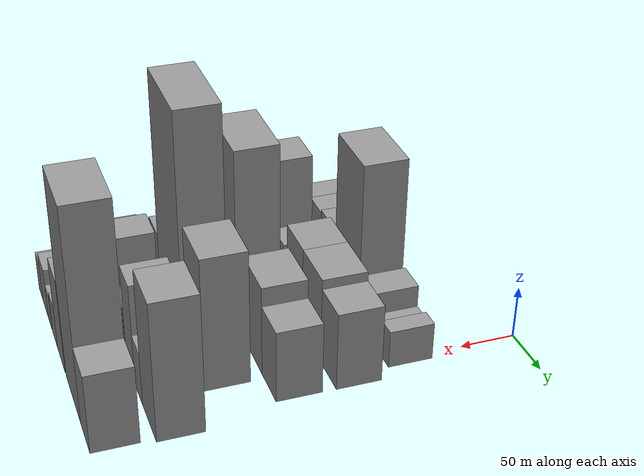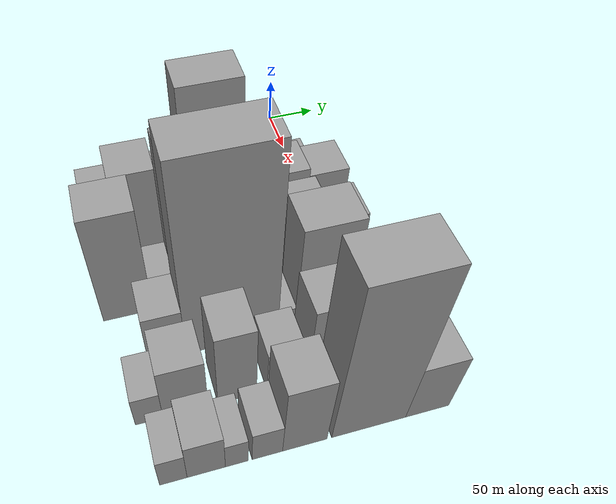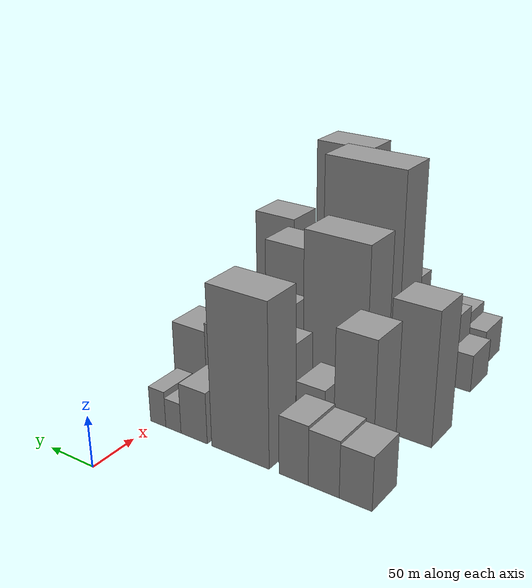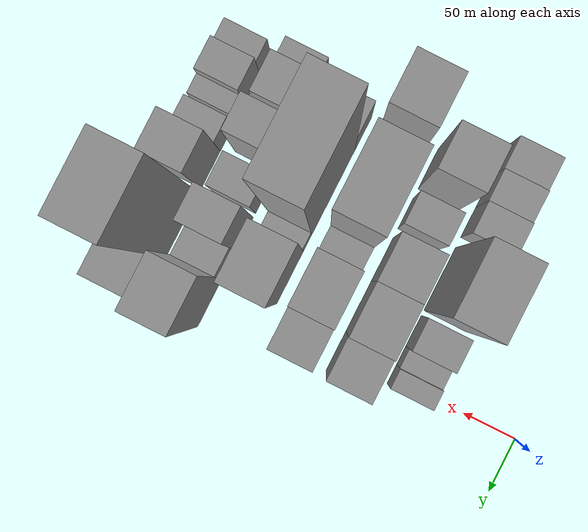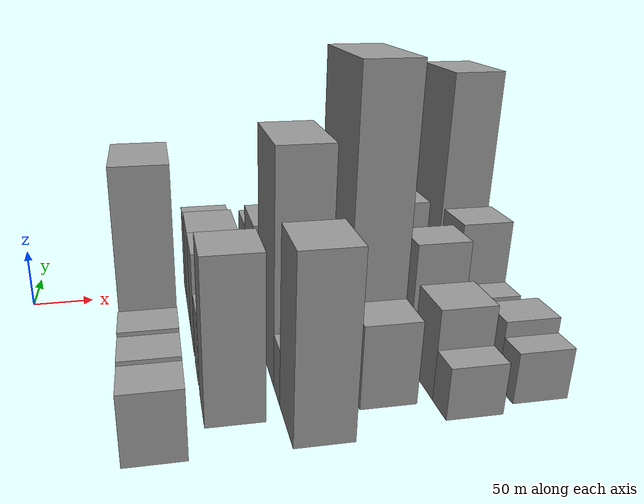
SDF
<sdf version="1.6">
 <world name="default">
  <model name="building_19">
   <static>1</static>
   <pose>100.0000 -207.8662 0 0.000000 0.000000 0.000000</pose>
   <link name="link">
    <pose>0 0 25.50 0 0 0</pose>
    <collision name="collision"><geometry><box><size>40.0000 30.1730 51.0000</size></box></geometry></collision>
    <visual name="visual">
     <cast_shadows>0</cast_shadows>
     <geometry><box><size>40.0000 30.1730 51.0000</size></box></geometry>
     <material>
      <script>
       <uri>model://grey_wall/materials/scripts</uri>
       <uri>model://grey_wall/materials/textures</uri>
       <name>vrc/grey_wall</name>
      </script>
     </material>
    </visual>
   </link>
  </model>
  <model name="building_20">
   <static>1</static>
   <pose>100.0000 -178.0327 0 0.000000 0.000000 0.000000</pose>
   <link name="link">
    <pose>0 0 27.00 0 0 0</pose>
    <collision name="collision"><geometry><box><size>40.0000 29.4939 54.0000</size></box></geometry></collision>
    <visual name="visual">
     <cast_shadows>0</cast_shadows>
     <geometry><box><size>40.0000 29.4939 54.0000</size></box></geometry>
     <material>
      <script>
       <uri>model://grey_wall/materials/scripts</uri>
       <uri>model://grey_wall/materials/textures</uri>
       <name>vrc/grey_wall</name>
      </script>
     </material>
    </visual>
   </link>
  </model>
  <model name="building_21">
   <static>1</static>
   <pose>100.0000 -148.8522 0 0.000000 0.000000 0.000000</pose>
   <link name="link">
    <pose>0 0 28.50 0 0 0</pose>
    <collision name="collision"><geometry><box><size>40.0000 28.8671 57.0000</size></box></geometry></collision>
    <visual name="visual">
     <cast_shadows>0</cast_shadows>
     <geometry><box><size>40.0000 28.8671 57.0000</size></box></geometry>
     <material>
      <script>
       <uri>model://grey_wall/materials/scripts</uri>
       <uri>model://grey_wall/materials/textures</uri>
       <name>vrc/grey_wall</name>
      </script>
     </material>
    </visual>
   </link>
  </model>
  <model name="building_22">
   <static>1</static>
   <pose>100.0000 -93.9196 0 0.000000 0.000000 0.000000</pose>
   <link name="link">
    <pose>0 0 78.00 0 0 0</pose>
    <collision name="collision"><geometry><box><size>40.0000 60.9980 156.0000</size></box></geometry></collision>
    <visual name="visual">
     <cast_shadows>0</cast_shadows>
     <geometry><box><size>40.0000 60.9980 156.0000</size></box></geometry>
     <material>
      <script>
       <uri>model://grey_wall/materials/scripts</uri>
       <uri>model://grey_wall/materials/textures</uri>
       <name>vrc/grey_wall</name>
      </script>
     </material>
    </visual>
   </link>
  </model>
  <model name="building_23">
   <static>1</static>
   <pose>100.0000 -43.6051 0 0.000000 0.000000 0.000000</pose>
   <link name="link">
    <pose>0 0 25.50 0 0 0</pose>
    <collision name="collision"><geometry><box><size>40.0000 29.6312 51.0000</size></box></geometry></collision>
    <visual name="visual">
     <cast_shadows>0</cast_shadows>
     <geometry><box><size>40.0000 29.6312 51.0000</size></box></geometry>
     <material>
      <script>
       <uri>model://grey_wall/materials/scripts</uri>
       <uri>model://grey_wall/materials/textures</uri>
       <name>vrc/grey_wall</name>
      </script>
     </material>
    </visual>
   </link>
  </model>
  <model name="building_24">
   <static>1</static>
   <pose>100.0000 -19.9299 0 0.000000 0.000000 0.000000</pose>
   <link name="link">
    <pose>0 0 15.00 0 0 0</pose>
    <collision name="collision"><geometry><box><size>40.0000 17.7191 30.0000</size></box></geometry></collision>
    <visual name="visual">
     <cast_shadows>0</cast_shadows>
     <geometry><box><size>40.0000 17.7191 30.0000</size></box></geometry>
     <material>
      <script>
       <uri>model://grey_wall/materials/scripts</uri>
       <uri>model://grey_wall/materials/textures</uri>
       <name>vrc/grey_wall</name>
      </script>
     </material>
    </visual>
   </link>
  </model>
  <model name="building_25">
   <static>1</static>
   <pose>100.0000 -2.0524 0 0.000000 0.000000 0.000000</pose>
   <link name="link">
    <pose>0 0 18.00 0 0 0</pose>
    <collision name="collision"><geometry><box><size>40.0000 18.0360 36.0000</size></box></geometry></collision>
    <visual name="visual">
     <cast_shadows>0</cast_shadows>
     <geometry><box><size>40.0000 18.0360 36.0000</size></box></geometry>
     <material>
      <script>
       <uri>model://grey_wall/materials/scripts</uri>
       <uri>model://grey_wall/materials/textures</uri>
       <name>vrc/grey_wall</name>
      </script>
     </material>
    </visual>
   </link>
  </model>
  <model name="building_68">
   <static>1</static>
   <pose>152.0000 -174.6141 0 0.000000 0.000000 0.000000</pose>
   <link name="link">
    <pose>0 0 60.00 0 0 0</pose>
    <collision name="collision"><geometry><box><size>40.0000 39.0573 120.0000</size></box></geometry></collision>
    <visual name="visual">
     <cast_shadows>0</cast_shadows>
     <geometry><box><size>40.0000 39.0573 120.0000</size></box></geometry>
     <material>
      <script>
       <uri>model://grey_wall/materials/scripts</uri>
       <uri>model://grey_wall/materials/textures</uri>
       <name>vrc/grey_wall</name>
      </script>
     </material>
    </visual>
   </link>
  </model>
  <model name="building_69">
   <static>1</static>
   <pose>152.0000 -131.2801 0 0.000000 0.000000 0.000000</pose>
   <link name="link">
    <pose>0 0 28.50 0 0 0</pose>
    <collision name="collision"><geometry><box><size>40.0000 29.6106 57.0000</size></box></geometry></collision>
    <visual name="visual">
     <cast_shadows>0</cast_shadows>
     <geometry><box><size>40.0000 29.6106 57.0000</size></box></geometry>
     <material>
      <script>
       <uri>model://grey_wall/materials/scripts</uri>
       <uri>model://grey_wall/materials/textures</uri>
       <name>vrc/grey_wall</name>
      </script>
     </material>
    </visual>
   </link>
  </model>
  <model name="building_70">
   <static>1</static>
   <pose>152.0000 -86.2488 0 0.000000 0.000000 0.000000</pose>
   <link name="link">
    <pose>0 0 42.00 0 0 0</pose>
    <collision name="collision"><geometry><box><size>40.0000 42.4521 84.0000</size></box></geometry></collision>
    <visual name="visual">
     <cast_shadows>0</cast_shadows>
     <geometry><box><size>40.0000 42.4521 84.0000</size></box></geometry>
     <material>
      <script>
       <uri>model://grey_wall/materials/scripts</uri>
       <uri>model://grey_wall/materials/textures</uri>
       <name>vrc/grey_wall</name>
      </script>
     </material>
    </visual>
   </link>
  </model>
  <model name="building_71">
   <static>1</static>
   <pose>152.0000 -41.0210 0 0.000000 0.000000 0.000000</pose>
   <link name="link">
    <pose>0 0 42.00 0 0 0</pose>
    <collision name="collision"><geometry><box><size>40.0000 48.0034 84.0000</size></box></geometry></collision>
    <visual name="visual">
     <cast_shadows>0</cast_shadows>
     <geometry><box><size>40.0000 48.0034 84.0000</size></box></geometry>
     <material>
      <script>
       <uri>model://grey_wall/materials/scripts</uri>
       <uri>model://grey_wall/materials/textures</uri>
       <name>vrc/grey_wall</name>
      </script>
     </material>
    </visual>
   </link>
  </model>
  <model name="building_72">
   <static>1</static>
   <pose>152.0000 2.0179 0 0.000000 0.000000 0.000000</pose>
   <link name="link">
    <pose>0 0 37.50 0 0 0</pose>
    <collision name="collision"><geometry><box><size>40.0000 38.0745 75.0000</size></box></geometry></collision>
    <visual name="visual">
     <cast_shadows>0</cast_shadows>
     <geometry><box><size>40.0000 38.0745 75.0000</size></box></geometry>
     <material>
      <script>
       <uri>model://grey_wall/materials/scripts</uri>
       <uri>model://grey_wall/materials/textures</uri>
       <name>vrc/grey_wall</name>
      </script>
     </material>
    </visual>
   </link>
  </model>
  <model name="building_122">
   <static>1</static>
   <pose>204.0000 -200.6649 0 0.000000 0.000000 0.000000</pose>
   <link name="link">
    <pose>0 0 66.00 0 0 0</pose>
    <collision name="collision"><geometry><box><size>40.0000 44.2879 132.0000</size></box></geometry></collision>
    <visual name="visual">
     <cast_shadows>0</cast_shadows>
     <geometry><box><size>40.0000 44.2879 132.0000</size></box></geometry>
     <material>
      <script>
       <uri>model://grey_wall/materials/scripts</uri>
       <uri>model://grey_wall/materials/textures</uri>
       <name>vrc/grey_wall</name>
      </script>
     </material>
    </visual>
   </link>
  </model>
  <model name="building_123">
   <static>1</static>
   <pose>204.0000 -167.4529 0 0.000000 0.000000 0.000000</pose>
   <link name="link">
    <pose>0 0 21.00 0 0 0</pose>
    <collision name="collision"><geometry><box><size>40.0000 22.1360 42.0000</size></box></geometry></collision>
    <visual name="visual">
     <cast_shadows>0</cast_shadows>
     <geometry><box><size>40.0000 22.1360 42.0000</size></box></geometry>
     <material>
      <script>
       <uri>model://grey_wall/materials/scripts</uri>
       <uri>model://grey_wall/materials/textures</uri>
       <name>vrc/grey_wall</name>
      </script>
     </material>
    </visual>
   </link>
  </model>
  <model name="building_124">
   <static>1</static>
   <pose>204.0000 -123.0507 0 0.000000 0.000000 0.000000</pose>
   <link name="link">
    <pose>0 0 87.00 0 0 0</pose>
    <collision name="collision"><geometry><box><size>40.0000 66.6684 174.0000</size></box></geometry></collision>
    <visual name="visual">
     <cast_shadows>0</cast_shadows>
     <geometry><box><size>40.0000 66.6684 174.0000</size></box></geometry>
     <material>
      <script>
       <uri>model://grey_wall/materials/scripts</uri>
       <uri>model://grey_wall/materials/textures</uri>
       <name>vrc/grey_wall</name>
      </script>
     </material>
    </visual>
   </link>
  </model>
  <model name="building_125">
   <static>1</static>
   <pose>204.0000 -78.4507 0 0.000000 0.000000 0.000000</pose>
   <link name="link">
    <pose>0 0 19.50 0 0 0</pose>
    <collision name="collision"><geometry><box><size>40.0000 22.5318 39.0000</size></box></geometry></collision>
    <visual name="visual">
     <cast_shadows>0</cast_shadows>
     <geometry><box><size>40.0000 22.5318 39.0000</size></box></geometry>
     <material>
      <script>
       <uri>model://grey_wall/materials/scripts</uri>
       <uri>model://grey_wall/materials/textures</uri>
       <name>vrc/grey_wall</name>
      </script>
     </material>
    </visual>
   </link>
  </model>
  <model name="building_126">
   <static>1</static>
   <pose>204.0000 -42.1700 0 0.000000 0.000000 0.000000</pose>
   <link name="link">
    <pose>0 0 43.50 0 0 0</pose>
    <collision name="collision"><geometry><box><size>40.0000 50.0296 87.0000</size></box></geometry></collision>
    <visual name="visual">
     <cast_shadows>0</cast_shadows>
     <geometry><box><size>40.0000 50.0296 87.0000</size></box></geometry>
     <material>
      <script>
       <uri>model://grey_wall/materials/scripts</uri>
       <uri>model://grey_wall/materials/textures</uri>
       <name>vrc/grey_wall</name>
      </script>
     </material>
    </visual>
   </link>
  </model>
  <model name="building_127">
   <static>1</static>
   <pose>204.0000 1.7032 0 0.000000 0.000000 0.000000</pose>
   <link name="link">
    <pose>0 0 34.50 0 0 0</pose>
    <collision name="collision"><geometry><box><size>40.0000 37.7168 69.0000</size></box></geometry></collision>
    <visual name="visual">
     <cast_shadows>0</cast_shadows>
     <geometry><box><size>40.0000 37.7168 69.0000</size></box></geometry>
     <material>
      <script>
       <uri>model://grey_wall/materials/scripts</uri>
       <uri>model://grey_wall/materials/textures</uri>
       <name>vrc/grey_wall</name>
      </script>
     </material>
    </visual>
   </link>
  </model>
  <model name="building_167">
   <static>1</static>
   <pose>256.0000 -175.7738 0 0.000000 0.000000 0.000000</pose>
   <link name="link">
    <pose>0 0 31.50 0 0 0</pose>
    <collision name="collision"><geometry><box><size>40.0000 32.5851 63.0000</size></box></geometry></collision>
    <visual name="visual">
     <cast_shadows>0</cast_shadows>
     <geometry><box><size>40.0000 32.5851 63.0000</size></box></geometry>
     <material>
      <script>
       <uri>model://grey_wall/materials/scripts</uri>
       <uri>model://grey_wall/materials/textures</uri>
       <name>vrc/grey_wall</name>
      </script>
     </material>
    </visual>
   </link>
  </model>
  <model name="building_168">
   <static>1</static>
   <pose>256.0000 -118.4840 0 0.000000 0.000000 0.000000</pose>
   <link name="link">
    <pose>0 0 112.50 0 0 0</pose>
    <collision name="collision"><geometry><box><size>40.0000 81.9945 225.0000</size></box></geometry></collision>
    <visual name="visual">
     <cast_shadows>0</cast_shadows>
     <geometry><box><size>40.0000 81.9945 225.0000</size></box></geometry>
     <material>
      <script>
       <uri>model://grey_wall/materials/scripts</uri>
       <uri>model://grey_wall/materials/textures</uri>
       <name>vrc/grey_wall</name>
      </script>
     </material>
    </visual>
   </link>
  </model>
  <model name="building_169">
   <static>1</static>
   <pose>256.0000 -69.5954 0 0.000000 0.000000 0.000000</pose>
   <link name="link">
    <pose>0 0 15.00 0 0 0</pose>
    <collision name="collision"><geometry><box><size>40.0000 15.7825 30.0000</size></box></geometry></collision>
    <visual name="visual">
     <cast_shadows>0</cast_shadows>
     <geometry><box><size>40.0000 15.7825 30.0000</size></box></geometry>
     <material>
      <script>
       <uri>model://grey_wall/materials/scripts</uri>
       <uri>model://grey_wall/materials/textures</uri>
       <name>vrc/grey_wall</name>
      </script>
     </material>
    </visual>
   </link>
  </model>
  <model name="building_170">
   <static>1</static>
   <pose>256.0000 -36.2695 0 0.000000 0.000000 0.000000</pose>
   <link name="link">
    <pose>0 0 64.50 0 0 0</pose>
    <collision name="collision"><geometry><box><size>40.0000 50.8694 129.0000</size></box></geometry></collision>
    <visual name="visual">
     <cast_shadows>0</cast_shadows>
     <geometry><box><size>40.0000 50.8694 129.0000</size></box></geometry>
     <material>
      <script>
       <uri>model://grey_wall/materials/scripts</uri>
       <uri>model://grey_wall/materials/textures</uri>
       <name>vrc/grey_wall</name>
      </script>
     </material>
    </visual>
   </link>
  </model>
  <model name="building_209">
   <static>1</static>
   <pose>308.0000 -201.0558 0 0.000000 0.000000 0.000000</pose>
   <link name="link">
    <pose>0 0 19.50 0 0 0</pose>
    <collision name="collision"><geometry><box><size>40.0000 22.3268 39.0000</size></box></geometry></collision>
    <visual name="visual">
     <cast_shadows>0</cast_shadows>
     <geometry><box><size>40.0000 22.3268 39.0000</size></box></geometry>
     <material>
      <script>
       <uri>model://grey_wall/materials/scripts</uri>
       <uri>model://grey_wall/materials/textures</uri>
       <name>vrc/grey_wall</name>
      </script>
     </material>
    </visual>
   </link>
  </model>
  <model name="building_210">
   <static>1</static>
   <pose>308.0000 -171.3919 0 0.000000 0.000000 0.000000</pose>
   <link name="link">
    <pose>0 0 34.50 0 0 0</pose>
    <collision name="collision"><geometry><box><size>40.0000 37.0009 69.0000</size></box></geometry></collision>
    <visual name="visual">
     <cast_shadows>0</cast_shadows>
     <geometry><box><size>40.0000 37.0009 69.0000</size></box></geometry>
     <material>
      <script>
       <uri>model://grey_wall/materials/scripts</uri>
       <uri>model://grey_wall/materials/textures</uri>
       <name>vrc/grey_wall</name>
      </script>
     </material>
    </visual>
   </link>
  </model>
  <model name="building_211">
   <static>1</static>
   <pose>308.0000 -128.5199 0 0.000000 0.000000 0.000000</pose>
   <link name="link">
    <pose>0 0 48.00 0 0 0</pose>
    <collision name="collision"><geometry><box><size>40.0000 32.7432 96.0000</size></box></geometry></collision>
    <visual name="visual">
     <cast_shadows>0</cast_shadows>
     <geometry><box><size>40.0000 32.7432 96.0000</size></box></geometry>
     <material>
      <script>
       <uri>model://grey_wall/materials/scripts</uri>
       <uri>model://grey_wall/materials/textures</uri>
       <name>vrc/grey_wall</name>
      </script>
     </material>
    </visual>
   </link>
  </model>
  <model name="building_212">
   <static>1</static>
   <pose>308.0000 -87.6714 0 0.000000 0.000000 0.000000</pose>
   <link name="link">
    <pose>0 0 27.00 0 0 0</pose>
    <collision name="collision"><geometry><box><size>40.0000 30.9537 54.0000</size></box></geometry></collision>
    <visual name="visual">
     <cast_shadows>0</cast_shadows>
     <geometry><box><size>40.0000 30.9537 54.0000</size></box></geometry>
     <material>
      <script>
       <uri>model://grey_wall/materials/scripts</uri>
       <uri>model://grey_wall/materials/textures</uri>
       <name>vrc/grey_wall</name>
      </script>
     </material>
    </visual>
   </link>
  </model>
  <model name="building_213">
   <static>1</static>
   <pose>308.0000 -52.2334 0 0.000000 0.000000 0.000000</pose>
   <link name="link">
    <pose>0 0 49.50 0 0 0</pose>
    <collision name="collision"><geometry><box><size>40.0000 31.9223 99.0000</size></box></geometry></collision>
    <visual name="visual">
     <cast_shadows>0</cast_shadows>
     <geometry><box><size>40.0000 31.9223 99.0000</size></box></geometry>
     <material>
      <script>
       <uri>model://grey_wall/materials/scripts</uri>
       <uri>model://grey_wall/materials/textures</uri>
       <name>vrc/grey_wall</name>
      </script>
     </material>
    </visual>
   </link>
  </model>
  <model name="building_214">
   <static>1</static>
   <pose>308.0000 -22.9744 0 0.000000 0.000000 0.000000</pose>
   <link name="link">
    <pose>0 0 25.50 0 0 0</pose>
    <collision name="collision"><geometry><box><size>40.0000 26.5957 51.0000</size></box></geometry></collision>
    <visual name="visual">
     <cast_shadows>0</cast_shadows>
     <geometry><box><size>40.0000 26.5957 51.0000</size></box></geometry>
     <material>
      <script>
       <uri>model://grey_wall/materials/scripts</uri>
       <uri>model://grey_wall/materials/textures</uri>
       <name>vrc/grey_wall</name>
      </script>
     </material>
    </visual>
   </link>
  </model>
  <model name="building_215">
   <static>1</static>
   <pose>308.0000 14.1128 0 0.000000 0.000000 0.000000</pose>
   <link name="link">
    <pose>0 0 66.00 0 0 0</pose>
    <collision name="collision"><geometry><box><size>40.0000 47.5788 132.0000</size></box></geometry></collision>
    <visual name="visual">
     <cast_shadows>0</cast_shadows>
     <geometry><box><size>40.0000 47.5788 132.0000</size></box></geometry>
     <material>
      <script>
       <uri>model://grey_wall/materials/scripts</uri>
       <uri>model://grey_wall/materials/textures</uri>
       <name>vrc/grey_wall</name>
      </script>
     </material>
    </visual>
   </link>
  </model>
  <model name="building_255">
   <static>1</static>
   <pose>360.0000 -192.3508 0 0.000000 0.000000 0.000000</pose>
   <link name="link">
    <pose>0 0 19.50 0 0 0</pose>
    <collision name="collision"><geometry><box><size>40.0000 21.0411 39.0000</size></box></geometry></collision>
    <visual name="visual">
     <cast_shadows>0</cast_shadows>
     <geometry><box><size>40.0000 21.0411 39.0000</size></box></geometry>
     <material>
      <script>
       <uri>model://grey_wall/materials/scripts</uri>
       <uri>model://grey_wall/materials/textures</uri>
       <name>vrc/grey_wall</name>
      </script>
     </material>
    </visual>
   </link>
  </model>
  <model name="building_256">
   <static>1</static>
   <pose>360.0000 -166.9506 0 0.000000 0.000000 0.000000</pose>
   <link name="link">
    <pose>0 0 25.50 0 0 0</pose>
    <collision name="collision"><geometry><box><size>40.0000 29.7593 51.0000</size></box></geometry></collision>
    <visual name="visual">
     <cast_shadows>0</cast_shadows>
     <geometry><box><size>40.0000 29.7593 51.0000</size></box></geometry>
     <material>
      <script>
       <uri>model://grey_wall/materials/scripts</uri>
       <uri>model://grey_wall/materials/textures</uri>
       <name>vrc/grey_wall</name>
      </script>
     </material>
    </visual>
   </link>
  </model>
  <model name="building_257">
   <static>1</static>
   <pose>360.0000 -143.0041 0 0.000000 0.000000 0.000000</pose>
   <link name="link">
    <pose>0 0 18.00 0 0 0</pose>
    <collision name="collision"><geometry><box><size>40.0000 18.1336 36.0000</size></box></geometry></collision>
    <visual name="visual">
     <cast_shadows>0</cast_shadows>
     <geometry><box><size>40.0000 18.1336 36.0000</size></box></geometry>
     <material>
      <script>
       <uri>model://grey_wall/materials/scripts</uri>
       <uri>model://grey_wall/materials/textures</uri>
       <name>vrc/grey_wall</name>
      </script>
     </material>
    </visual>
   </link>
  </model>
  <model name="building_258">
   <static>1</static>
   <pose>360.0000 -118.7167 0 0.000000 0.000000 0.000000</pose>
   <link name="link">
    <pose>0 0 21.00 0 0 0</pose>
    <collision name="collision"><geometry><box><size>40.0000 24.4412 42.0000</size></box></geometry></collision>
    <visual name="visual">
     <cast_shadows>0</cast_shadows>
     <geometry><box><size>40.0000 24.4412 42.0000</size></box></geometry>
     <material>
      <script>
       <uri>model://grey_wall/materials/scripts</uri>
       <uri>model://grey_wall/materials/textures</uri>
       <name>vrc/grey_wall</name>
      </script>
     </material>
    </visual>
   </link>
  </model>
  <model name="building_259">
   <static>1</static>
   <pose>360.0000 -88.2922 0 0.000000 0.000000 0.000000</pose>
   <link name="link">
    <pose>0 0 46.50 0 0 0</pose>
    <collision name="collision"><geometry><box><size>40.0000 36.4079 93.0000</size></box></geometry></collision>
    <visual name="visual">
     <cast_shadows>0</cast_shadows>
     <geometry><box><size>40.0000 36.4079 93.0000</size></box></geometry>
     <material>
      <script>
       <uri>model://grey_wall/materials/scripts</uri>
       <uri>model://grey_wall/materials/textures</uri>
       <name>vrc/grey_wall</name>
      </script>
     </material>
    </visual>
   </link>
  </model>
  <model name="building_260">
   <static>1</static>
   <pose>360.0000 -34.6768 0 0.000000 0.000000 0.000000</pose>
   <link name="link">
    <pose>0 0 100.50 0 0 0</pose>
    <collision name="collision"><geometry><box><size>40.0000 62.8228 201.0000</size></box></geometry></collision>
    <visual name="visual">
     <cast_shadows>0</cast_shadows>
     <geometry><box><size>40.0000 62.8228 201.0000</size></box></geometry>
     <material>
      <script>
       <uri>model://grey_wall/materials/scripts</uri>
       <uri>model://grey_wall/materials/textures</uri>
       <name>vrc/grey_wall</name>
      </script>
     </material>
    </visual>
   </link>
  </model>
  <model name="building_261">
   <static>1</static>
   <pose>360.0000 15.6604 0 0.000000 0.000000 0.000000</pose>
   <link name="link">
    <pose>0 0 37.50 0 0 0</pose>
    <collision name="collision"><geometry><box><size>40.0000 37.8515 75.0000</size></box></geometry></collision>
    <visual name="visual">
     <cast_shadows>0</cast_shadows>
     <geometry><box><size>40.0000 37.8515 75.0000</size></box></geometry>
     <material>
      <script>
       <uri>model://grey_wall/materials/scripts</uri>
       <uri>model://grey_wall/materials/textures</uri>
       <name>vrc/grey_wall</name>
      </script>
     </material>
    </visual>
   </link>
  </model>
 </world>
</sdf>
